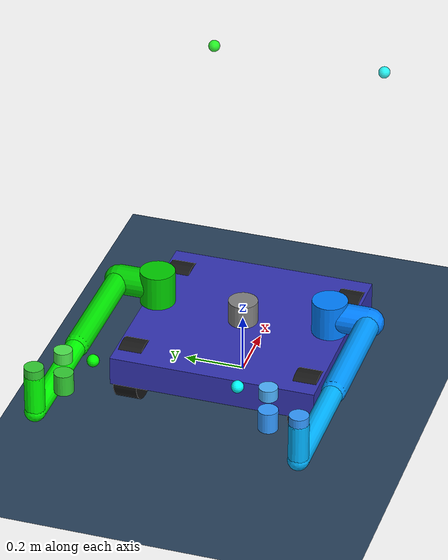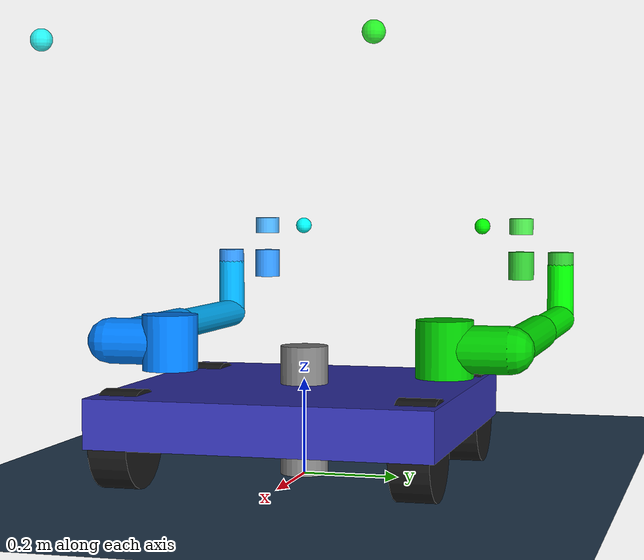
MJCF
<mujoco model="wheeled_dual_ur5e">
  <compiler angle="radian" autolimits="true"/>

  <option timestep="0.002" integrator="implicitfast" gravity="0 0 -9.81"/>

  <visual>
    <headlight diffuse="0.6 0.6 0.6" ambient="0.3 0.3 0.3" specular="0 0 0"/>
    <rgba haze="0.15 0.25 0.35 1"/>
    <global azimuth="120" elevation="-20"/>
    <quality shadowsize="4096"/>
    <map force="0.1" zfar="30"/>
  </visual>

  <asset>
    <texture type="skybox" builtin="gradient" rgb1="0.3 0.5 0.7" rgb2="0 0 0"
             width="512" height="3072"/>
    <texture type="2d" name="groundplane" builtin="checker" mark="edge"
             rgb1="0.2 0.3 0.4" rgb2="0.1 0.2 0.3" markrgb="0.8 0.8 0.8"
             width="300" height="300"/>
    <material name="groundplane" texture="groundplane" texuniform="true"
              texrepeat="5 5" reflectance="0.2"/>
  </asset>

  <default>
    <joint limited="true"/>
    <geom contype="1" conaffinity="1" condim="3" solref="0.008 1"/>
    <position kp="400" kv="40" ctrllimited="true"/>
  </default>

  <worldbody>

    <!-- Scene lighting and ground -->
    <light pos="0 0 3.5" dir="0 0 -1" directional="true"
           diffuse="0.4 0.4 0.4" specular="0.1 0.1 0.1"/>
    <light pos="1.5 1.5 2.5" dir="-1 -1 -1.5" diffuse="0.5 0.5 0.5"/>
    <geom name="floor" type="plane" size="0 0 0.05" pos="0 0 0"
          material="groundplane"/>

    <!-- Target markers for left and right EE -->
    <body name="left_target_body" mocap="true" pos="0.62 0.3 0.86">
      <site name="left_target_site" type="sphere" size="0.020" rgba="0 1 0 0.8"/>
    </body>

    <body name="right_target_body" mocap="true" pos="0.62 -0.3 0.86">
      <site name="right_target_site" type="sphere" size="0.020" rgba="0 1 1 0.8"/>
    </body>

    <!-- Virtual mobile base -->
    <body name="base_x_body" pos="0 0 0">
      <inertial pos="0 0 0" mass="2.0" diaginertia="0.1 0.1 0.1"/>
      <joint name="base_x" type="slide" axis="1 0 0" range="-3.0 3.0" damping="10.0"/>

      <body name="base_y_body">
        <inertial pos="0 0 0" mass="2.0" diaginertia="0.1 0.1 0.1"/>
        <joint name="base_y" type="slide" axis="0 1 0" range="-3.0 3.0" damping="10.0"/>

        <body name="base_yaw_body">
          <inertial pos="0 0 0" mass="2.0" diaginertia="0.1 0.1 0.1"/>
          <joint name="base_yaw" type="hinge" axis="0 0 1" range="-3.1416 3.1416" damping="5.0"/>

          <!-- Chassis (wider to accommodate two arms) -->
          <body name="chassis" pos="0 0 0.14">
            <geom type="box" size="0.35 0.35 0.05" pos="0 0 0" rgba="0.2 0.2 0.7 1" mass="30.0"/>

            <!-- Four wheels -->
            <geom type="cylinder" size="0.1 0.04" pos=" 0.25  0.30 -0.04"
                  euler="1.5708 0 0" rgba="0.1 0.1 0.1 1" mass="1.0"/>
            <geom type="cylinder" size="0.1 0.04" pos=" 0.25 -0.30 -0.04"
                  euler="1.5708 0 0" rgba="0.1 0.1 0.1 1" mass="1.0"/>
            <geom type="cylinder" size="0.1 0.04" pos="-0.25  0.30 -0.04"
                  euler="1.5708 0 0" rgba="0.1 0.1 0.1 1" mass="1.0"/>
            <geom type="cylinder" size="0.1 0.04" pos="-0.25 -0.30 -0.04"
                  euler="1.5708 0 0" rgba="0.1 0.1 0.1 1" mass="1.0"/>
          </body>

          <!-- Lift stage -->
          <body name="base_z_body" pos="0 0 0">
            <inertial pos="0 0 0.1" mass="3.0" diaginertia="0.1 0.1 0.1"/>
            <joint name="base_z" type="slide" axis="0 0 1" range="0.0 0.5" damping="10.0"/>

            <!-- Lift column -->
            <geom type="cylinder" size="0.05 0.135" pos="0 0 0.135"
                  rgba="0.5 0.5 0.5 1" mass="3.0"/>

            <!-- LEFT ARM: mounted at y=+0.3m -->
            <body name="left_shoulder_link" pos="0 0.3 0.27">
              <inertial pos="0 0 0" mass="3.761" diaginertia="0.01 0.01 0.01"/>
              <joint name="left_shoulder_pan_joint" type="hinge" axis="0 0 1"
                     range="-6.2832 6.2832" damping="1.0" armature="0.1"/>
              <geom type="cylinder" size="0.06 0.06" rgba="0 0.8 0 1"/>
              <geom type="capsule" fromto="0 0 0 0 0.1358 0" size="0.05" rgba="0 0.8 0 1"/>

              <body name="left_upper_arm_link" pos="0 0.1358 0">
                <inertial pos="-0.2125 0 0" mass="8.058" diaginertia="0.2 0.2 0.01"/>
                <joint name="left_shoulder_lift_joint" type="hinge" axis="0 1 0"
                       range="-6.2832 6.2832" damping="1.0" armature="0.1"/>
                <geom type="capsule" fromto="0 0 0 -0.425 0 0" size="0.04" rgba="0 0.9 0 1"/>

                <body name="left_forearm_link" pos="-0.425 0 0">
                  <inertial pos="-0.1961 0 0.067" mass="2.846" diaginertia="0.05 0.05 0.01"/>
                  <joint name="left_elbow_joint" type="hinge" axis="0 1 0"
                         range="-3.1416 3.1416" damping="0.5" armature="0.1"/>
                  <geom type="capsule" fromto="0 0 0 -0.3922 0 0" size="0.035" rgba="0 1 0 1"/>
                  <geom type="capsule" fromto="-0.3922 0 0 -0.3922 0 0.1333" size="0.033" rgba="0 1 0 1"/>

                  <body name="left_wrist_1_link" pos="-0.3922 0 0.1333">
                    <inertial pos="0 -0.05 0" mass="1.37" diaginertia="0.005 0.005 0.005"/>
                    <joint name="left_wrist_1_joint" type="hinge" axis="0 1 0"
                           range="-6.2832 6.2832" damping="0.1" armature="0.01"/>
                    <geom type="cylinder" size="0.032 0.035" rgba="0.2 0.8 0.2 1"/>

                    <body name="left_wrist_2_link" pos="0 -0.0997 0">
                      <inertial pos="0 0 0.05" mass="1.37" diaginertia="0.005 0.005 0.005"/>
                      <joint name="left_wrist_2_joint" type="hinge" axis="0 0 1"
                             range="-6.2832 6.2832" damping="0.1" armature="0.01"/>
                      <geom type="cylinder" size="0.032 0.035" rgba="0.2 0.8 0.2 1"/>

                      <body name="left_wrist_3_link" pos="0 0 0.0996">
                        <inertial pos="0 -0.05 0" mass="0.195" diaginertia="0.001 0.001 0.001"/>
                        <joint name="left_wrist_3_joint" type="hinge" axis="0 1 0"
                               range="-6.2832 6.2832" damping="0.1" armature="0.01"/>
                        <geom type="cylinder" size="0.03 0.02" rgba="0.3 0.9 0.3 1"/>
                        <site name="left_ee_site" pos="0 -0.0996 0" size="0.020" rgba="0 1 0 1" type="sphere"/>
                      </body>
                    </body>
                  </body>
                </body>
              </body>
            </body>

            <!-- RIGHT ARM: mounted at y=-0.3m -->
            <body name="right_shoulder_link" pos="0 -0.3 0.27">
              <inertial pos="0 0 0" mass="3.761" diaginertia="0.01 0.01 0.01"/>
              <joint name="right_shoulder_pan_joint" type="hinge" axis="0 0 1"
                     range="-6.2832 6.2832" damping="1.0" armature="0.1"/>
              <geom type="cylinder" size="0.06 0.06" rgba="0 0.5 1 1"/>
              <geom type="capsule" fromto="0 0 0 0 -0.1358 0" size="0.05" rgba="0 0.5 1 1"/>

              <body name="right_upper_arm_link" pos="0 -0.1358 0">
                <inertial pos="-0.2125 0 0" mass="8.058" diaginertia="0.2 0.2 0.01"/>
                <joint name="right_shoulder_lift_joint" type="hinge" axis="0 1 0"
                       range="-6.2832 6.2832" damping="1.0" armature="0.1"/>
                <geom type="capsule" fromto="0 0 0 -0.425 0 0" size="0.04" rgba="0 0.6 1 1"/>

                <body name="right_forearm_link" pos="-0.425 0 0">
                  <inertial pos="-0.1961 0 0.067" mass="2.846" diaginertia="0.05 0.05 0.01"/>
                  <joint name="right_elbow_joint" type="hinge" axis="0 1 0"
                         range="-3.1416 3.1416" damping="0.5" armature="0.1"/>
                  <geom type="capsule" fromto="0 0 0 -0.3922 0 0" size="0.035" rgba="0 0.7 1 1"/>
                  <geom type="capsule" fromto="-0.3922 0 0 -0.3922 0 0.1333" size="0.033" rgba="0 0.7 1 1"/>

                  <body name="right_wrist_1_link" pos="-0.3922 0 0.1333">
                    <inertial pos="0 0.05 0" mass="1.37" diaginertia="0.005 0.005 0.005"/>
                    <joint name="right_wrist_1_joint" type="hinge" axis="0 1 0"
                           range="-6.2832 6.2832" damping="0.1" armature="0.01"/>
                    <geom type="cylinder" size="0.032 0.035" rgba="0.2 0.6 1 1"/>

                    <body name="right_wrist_2_link" pos="0 0.0997 0">
                      <inertial pos="0 0 0.05" mass="1.37" diaginertia="0.005 0.005 0.005"/>
                      <joint name="right_wrist_2_joint" type="hinge" axis="0 0 1"
                             range="-6.2832 6.2832" damping="0.1" armature="0.01"/>
                      <geom type="cylinder" size="0.032 0.035" rgba="0.2 0.6 1 1"/>

                      <body name="right_wrist_3_link" pos="0 0 0.0996">
                        <inertial pos="0 0.05 0" mass="0.195" diaginertia="0.001 0.001 0.001"/>
                        <joint name="right_wrist_3_joint" type="hinge" axis="0 1 0"
                               range="-6.2832 6.2832" damping="0.1" armature="0.01"/>
                        <geom type="cylinder" size="0.03 0.02" rgba="0.3 0.7 1 1"/>
                        <site name="right_ee_site" pos="0 0.0996 0" size="0.020" rgba="0 1 1 1" type="sphere"/>
                      </body>
                    </body>
                  </body>
                </body>
              </body>
            </body>

          </body>
        </body>
      </body>
    </body>

  </worldbody>

  <!-- Position actuators for all 16 DOFs -->
  <actuator>
    <!-- Base actuators (4) -->
    <position name="act_base_x" joint="base_x" kp="2000" kv="200" ctrlrange="-3.0 3.0"/>
    <position name="act_base_y" joint="base_y" kp="2000" kv="200" ctrlrange="-3.0 3.0"/>
    <position name="act_base_z" joint="base_z" kp="35000" kv="800" ctrlrange="0.0 0.5"/>
    <position name="act_base_yaw" joint="base_yaw" kp="2000" kv="200" ctrlrange="-3.1416 3.1416"/>

    <!-- Left arm actuators (6) -->
    <position name="act_left_shoulder_pan" joint="left_shoulder_pan_joint" kp="2000" kv="200" ctrlrange="-6.28 6.28"/>
    <position name="act_left_shoulder_lift" joint="left_shoulder_lift_joint" kp="2000" kv="200" ctrlrange="-6.28 6.28"/>
    <position name="act_left_elbow" joint="left_elbow_joint" kp="2000" kv="200" ctrlrange="-3.14 3.14"/>
    <position name="act_left_wrist_1" joint="left_wrist_1_joint" kp="500" kv="50" ctrlrange="-6.28 6.28"/>
    <position name="act_left_wrist_2" joint="left_wrist_2_joint" kp="500" kv="50" ctrlrange="-6.28 6.28"/>
    <position name="act_left_wrist_3" joint="left_wrist_3_joint" kp="500" kv="50" ctrlrange="-6.28 6.28"/>

    <!-- Right arm actuators (6) -->
    <position name="act_right_shoulder_pan" joint="right_shoulder_pan_joint" kp="2000" kv="200" ctrlrange="-6.28 6.28"/>
    <position name="act_right_shoulder_lift" joint="right_shoulder_lift_joint" kp="2000" kv="200" ctrlrange="-6.28 6.28"/>
    <position name="act_right_elbow" joint="right_elbow_joint" kp="2000" kv="200" ctrlrange="-3.14 3.14"/>
    <position name="act_right_wrist_1" joint="right_wrist_1_joint" kp="500" kv="50" ctrlrange="-6.28 6.28"/>
    <position name="act_right_wrist_2" joint="right_wrist_2_joint" kp="500" kv="50" ctrlrange="-6.28 6.28"/>
    <position name="act_right_wrist_3" joint="right_wrist_3_joint" kp="500" kv="50" ctrlrange="-6.28 6.28"/>
  </actuator>

</mujoco>
